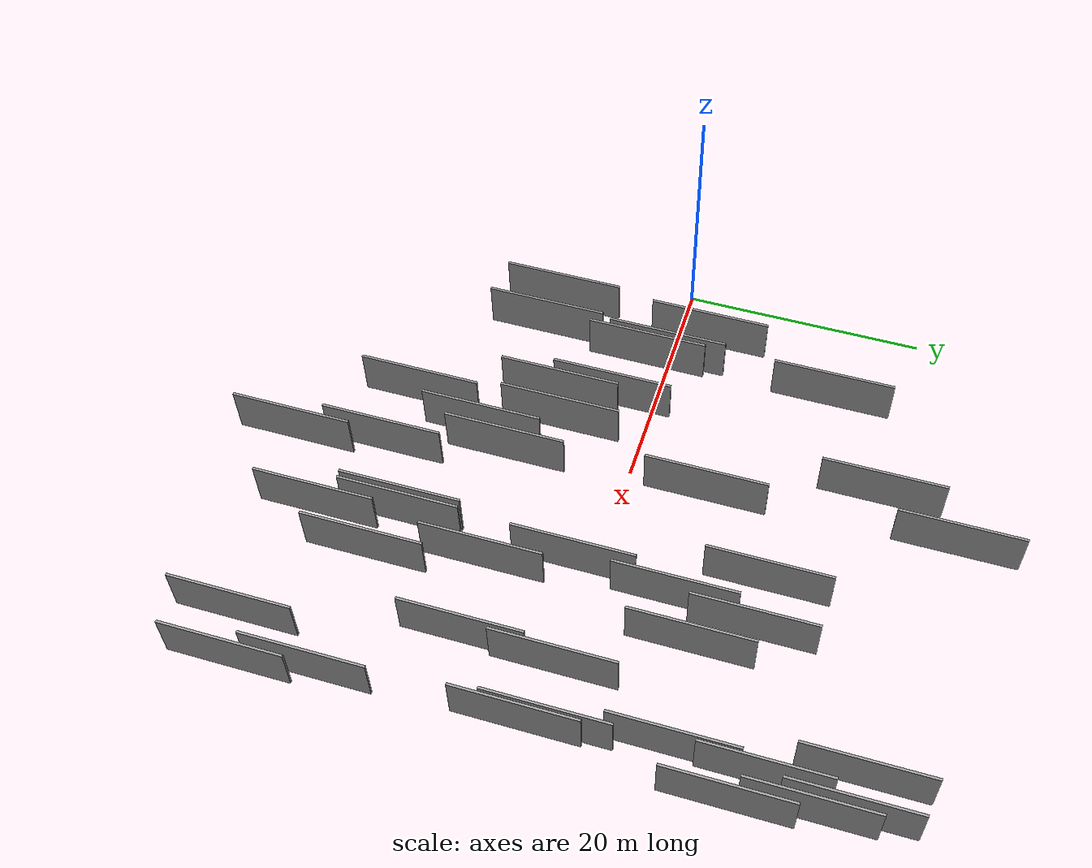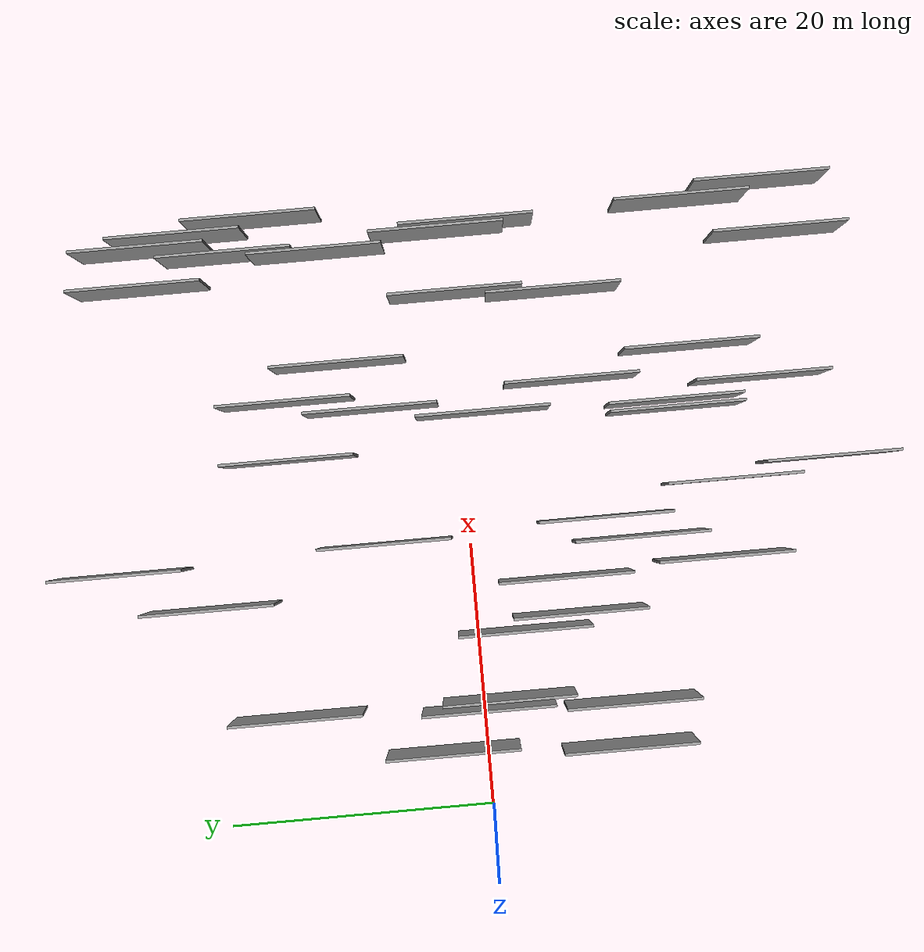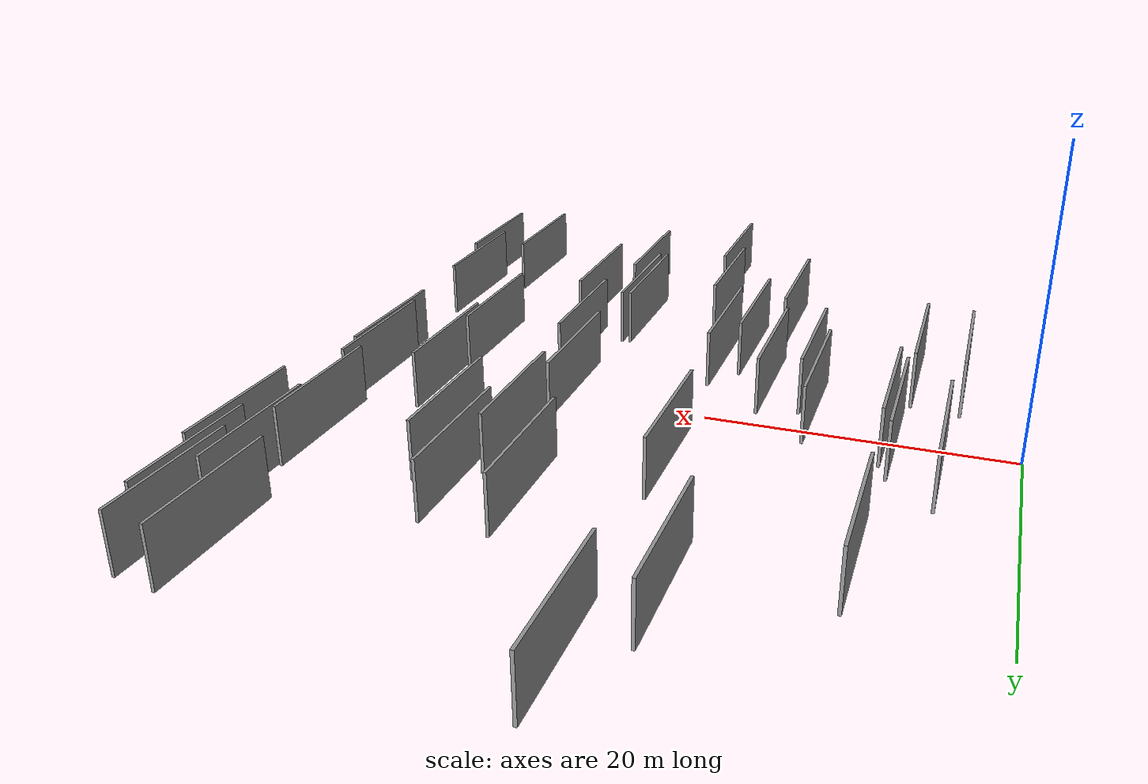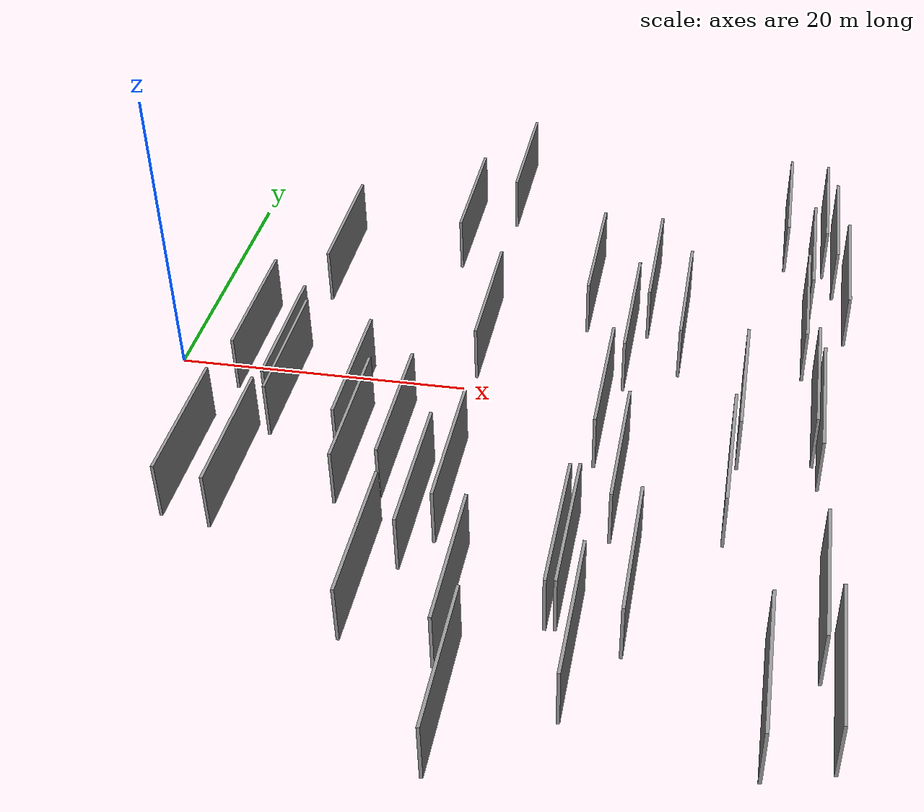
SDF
<sdf version="1.6">
 <world name="default">
  <scene>
   <sky><clouds><speed>12</speed></clouds></sky>
   <ambient>0.4 0.4 0.4 1</ambient>
   <background>0.7 0.7 0.7 1</background>
   <shadows>1</shadows>
  </scene>
  <gravity>0 0 -9.8066</gravity>
  <magnetic_field>6e-06 2.3e-05 -4.2e-05</magnetic_field>
  <physics default="0" name="default_physics" type="ode">
   <ode>
    <solver>
     <type>quick</type>
     <iters>10</iters>
     <sor>1.0</sor>
     <use_dynamic_moi_rescaling>0</use_dynamic_moi_rescaling>
    </solver>
    <constraints>
     <cfm>0</cfm>
     <erp>0.2</erp>
     <contact_max_correcting_vel>100</contact_max_correcting_vel>
     <contact_surface_layer>0.001</contact_surface_layer>
    </constraints>
   </ode>
   <max_step_size>0.004</max_step_size>
   <real_time_factor>1</real_time_factor>
   <real_time_update_rate>250</real_time_update_rate>
  </physics>
  <light name="sun" type="directional">
   <pose>0 0 10 0 0 0</pose>
   <diffuse>0.8 0.8 0.8 1</diffuse>
   <specular>0.2 0.2 0.2 1</specular>
   <attenuation>
    <range>1000</range>
    <constant>0.9</constant>
    <linear>0.01</linear>
    <quadratic>0.001</quadratic>
   </attenuation>
   <direction>-0.5 0.1 -0.9</direction>
  </light>
  <model name="grey_wall_1">
   <static>1</static>
   <pose>30.7414 6.5558 0.0 0.000000 0.000000 1.570796</pose>
   <link name="link">
    <pose>0 0 2.00 0 0 0</pose>
    <collision name="collision"><geometry><box><size>10.00 0.2 4.00</size></box></geometry></collision>
    <visual name="visual">
     <cast_shadows>0</cast_shadows>
     <geometry><box><size>10.00 0.2 4.00</size></box></geometry>
     <material>
      <script>
       <uri>model://grey_wall/materials/scripts</uri>
       <uri>model://grey_wall/materials/textures</uri>
       <name>vrc/grey_wall</name>
      </script>
     </material>
    </visual>
   </link>
  </model>
  <model name="grey_wall_2">
   <static>1</static>
   <pose>17.5205 -18.7293 0.0 0.000000 0.000000 1.570796</pose>
   <link name="link">
    <pose>0 0 2.00 0 0 0</pose>
    <collision name="collision"><geometry><box><size>10.00 0.2 4.00</size></box></geometry></collision>
    <visual name="visual">
     <cast_shadows>0</cast_shadows>
     <geometry><box><size>10.00 0.2 4.00</size></box></geometry>
     <material>
      <script>
       <uri>model://grey_wall/materials/scripts</uri>
       <uri>model://grey_wall/materials/textures</uri>
       <name>vrc/grey_wall</name>
      </script>
     </material>
    </visual>
   </link>
  </model>
  <model name="grey_wall_3">
   <static>1</static>
   <pose>43.6340 0.5578 0.0 0.000000 0.000000 1.570796</pose>
   <link name="link">
    <pose>0 0 2.00 0 0 0</pose>
    <collision name="collision"><geometry><box><size>10.00 0.2 4.00</size></box></geometry></collision>
    <visual name="visual">
     <cast_shadows>0</cast_shadows>
     <geometry><box><size>10.00 0.2 4.00</size></box></geometry>
     <material>
      <script>
       <uri>model://grey_wall/materials/scripts</uri>
       <uri>model://grey_wall/materials/textures</uri>
       <name>vrc/grey_wall</name>
      </script>
     </material>
    </visual>
   </link>
  </model>
  <model name="grey_wall_4">
   <static>1</static>
   <pose>44.0097 -1.6854 0.0 0.000000 0.000000 1.570796</pose>
   <link name="link">
    <pose>0 0 2.00 0 0 0</pose>
    <collision name="collision"><geometry><box><size>10.00 0.2 4.00</size></box></geometry></collision>
    <visual name="visual">
     <cast_shadows>0</cast_shadows>
     <geometry><box><size>10.00 0.2 4.00</size></box></geometry>
     <material>
      <script>
       <uri>model://grey_wall/materials/scripts</uri>
       <uri>model://grey_wall/materials/textures</uri>
       <name>vrc/grey_wall</name>
      </script>
     </material>
    </visual>
   </link>
  </model>
  <model name="grey_wall_5">
   <static>1</static>
   <pose>43.1147 16.3362 0.0 0.000000 0.000000 1.570796</pose>
   <link name="link">
    <pose>0 0 2.00 0 0 0</pose>
    <collision name="collision"><geometry><box><size>10.00 0.2 4.00</size></box></geometry></collision>
    <visual name="visual">
     <cast_shadows>0</cast_shadows>
     <geometry><box><size>10.00 0.2 4.00</size></box></geometry>
     <material>
      <script>
       <uri>model://grey_wall/materials/scripts</uri>
       <uri>model://grey_wall/materials/textures</uri>
       <name>vrc/grey_wall</name>
      </script>
     </material>
    </visual>
   </link>
  </model>
  <model name="grey_wall_6">
   <static>1</static>
   <pose>24.2539 -27.2344 0.0 0.000000 0.000000 1.570796</pose>
   <link name="link">
    <pose>0 0 2.00 0 0 0</pose>
    <collision name="collision"><geometry><box><size>10.00 0.2 4.00</size></box></geometry></collision>
    <visual name="visual">
     <cast_shadows>0</cast_shadows>
     <geometry><box><size>10.00 0.2 4.00</size></box></geometry>
     <material>
      <script>
       <uri>model://grey_wall/materials/scripts</uri>
       <uri>model://grey_wall/materials/textures</uri>
       <name>vrc/grey_wall</name>
      </script>
     </material>
    </visual>
   </link>
  </model>
  <model name="grey_wall_7">
   <static>1</static>
   <pose>13.3292 -3.4787 0.0 0.000000 0.000000 1.570796</pose>
   <link name="link">
    <pose>0 0 2.00 0 0 0</pose>
    <collision name="collision"><geometry><box><size>10.00 0.2 4.00</size></box></geometry></collision>
    <visual name="visual">
     <cast_shadows>0</cast_shadows>
     <geometry><box><size>10.00 0.2 4.00</size></box></geometry>
     <material>
      <script>
       <uri>model://grey_wall/materials/scripts</uri>
       <uri>model://grey_wall/materials/textures</uri>
       <name>vrc/grey_wall</name>
      </script>
     </material>
    </visual>
   </link>
  </model>
  <model name="grey_wall_8">
   <static>1</static>
   <pose>41.1831 23.1403 0.0 0.000000 0.000000 1.570796</pose>
   <link name="link">
    <pose>0 0 2.00 0 0 0</pose>
    <collision name="collision"><geometry><box><size>10.00 0.2 4.00</size></box></geometry></collision>
    <visual name="visual">
     <cast_shadows>0</cast_shadows>
     <geometry><box><size>10.00 0.2 4.00</size></box></geometry>
     <material>
      <script>
       <uri>model://grey_wall/materials/scripts</uri>
       <uri>model://grey_wall/materials/textures</uri>
       <name>vrc/grey_wall</name>
      </script>
     </material>
    </visual>
   </link>
  </model>
  <model name="grey_wall_9">
   <static>1</static>
   <pose>29.8172 -1.7241 0.0 0.000000 0.000000 1.570796</pose>
   <link name="link">
    <pose>0 0 2.00 0 0 0</pose>
    <collision name="collision"><geometry><box><size>10.00 0.2 4.00</size></box></geometry></collision>
    <visual name="visual">
     <cast_shadows>0</cast_shadows>
     <geometry><box><size>10.00 0.2 4.00</size></box></geometry>
     <material>
      <script>
       <uri>model://grey_wall/materials/scripts</uri>
       <uri>model://grey_wall/materials/textures</uri>
       <name>vrc/grey_wall</name>
      </script>
     </material>
    </visual>
   </link>
  </model>
  <model name="grey_wall_10">
   <static>1</static>
   <pose>38.4385 -7.6919 0.0 0.000000 0.000000 1.570796</pose>
   <link name="link">
    <pose>0 0 2.00 0 0 0</pose>
    <collision name="collision"><geometry><box><size>10.00 0.2 4.00</size></box></geometry></collision>
    <visual name="visual">
     <cast_shadows>0</cast_shadows>
     <geometry><box><size>10.00 0.2 4.00</size></box></geometry>
     <material>
      <script>
       <uri>model://grey_wall/materials/scripts</uri>
       <uri>model://grey_wall/materials/textures</uri>
       <name>vrc/grey_wall</name>
      </script>
     </material>
    </visual>
   </link>
  </model>
  <model name="grey_wall_11">
   <static>1</static>
   <pose>31.6705 -8.4956 0.0 0.000000 0.000000 1.570796</pose>
   <link name="link">
    <pose>0 0 2.00 0 0 0</pose>
    <collision name="collision"><geometry><box><size>10.00 0.2 4.00</size></box></geometry></collision>
    <visual name="visual">
     <cast_shadows>0</cast_shadows>
     <geometry><box><size>10.00 0.2 4.00</size></box></geometry>
     <material>
      <script>
       <uri>model://grey_wall/materials/scripts</uri>
       <uri>model://grey_wall/materials/textures</uri>
       <name>vrc/grey_wall</name>
      </script>
     </material>
    </visual>
   </link>
  </model>
  <model name="grey_wall_12">
   <static>1</static>
   <pose>8.3221 -1.8800 0.0 0.000000 0.000000 1.570796</pose>
   <link name="link">
    <pose>0 0 2.00 0 0 0</pose>
    <collision name="collision"><geometry><box><size>10.00 0.2 4.00</size></box></geometry></collision>
    <visual name="visual">
     <cast_shadows>0</cast_shadows>
     <geometry><box><size>10.00 0.2 4.00</size></box></geometry>
     <material>
      <script>
       <uri>model://grey_wall/materials/scripts</uri>
       <uri>model://grey_wall/materials/textures</uri>
       <name>vrc/grey_wall</name>
      </script>
     </material>
    </visual>
   </link>
  </model>
  <model name="grey_wall_13">
   <static>1</static>
   <pose>4.7229 2.6164 0.0 0.000000 0.000000 1.570796</pose>
   <link name="link">
    <pose>0 0 2.00 0 0 0</pose>
    <collision name="collision"><geometry><box><size>10.00 0.2 4.00</size></box></geometry></collision>
    <visual name="visual">
     <cast_shadows>0</cast_shadows>
     <geometry><box><size>10.00 0.2 4.00</size></box></geometry>
     <material>
      <script>
       <uri>model://grey_wall/materials/scripts</uri>
       <uri>model://grey_wall/materials/textures</uri>
       <name>vrc/grey_wall</name>
      </script>
     </material>
    </visual>
   </link>
  </model>
  <model name="grey_wall_14">
   <static>1</static>
   <pose>44.4008 -17.6628 0.0 0.000000 0.000000 1.570796</pose>
   <link name="link">
    <pose>0 0 2.00 0 0 0</pose>
    <collision name="collision"><geometry><box><size>10.00 0.2 4.00</size></box></geometry></collision>
    <visual name="visual">
     <cast_shadows>0</cast_shadows>
     <geometry><box><size>10.00 0.2 4.00</size></box></geometry>
     <material>
      <script>
       <uri>model://grey_wall/materials/scripts</uri>
       <uri>model://grey_wall/materials/textures</uri>
       <name>vrc/grey_wall</name>
      </script>
     </material>
    </visual>
   </link>
  </model>
  <model name="grey_wall_15">
   <static>1</static>
   <pose>20.0169 26.3299 0.0 0.000000 0.000000 1.570796</pose>
   <link name="link">
    <pose>0 0 2.00 0 0 0</pose>
    <collision name="collision"><geometry><box><size>10.00 0.2 4.00</size></box></geometry></collision>
    <visual name="visual">
     <cast_shadows>0</cast_shadows>
     <geometry><box><size>10.00 0.2 4.00</size></box></geometry>
     <material>
      <script>
       <uri>model://grey_wall/materials/scripts</uri>
       <uri>model://grey_wall/materials/textures</uri>
       <name>vrc/grey_wall</name>
      </script>
     </material>
    </visual>
   </link>
  </model>
  <model name="grey_wall_16">
   <static>1</static>
   <pose>31.7821 12.8897 0.0 0.000000 0.000000 1.570796</pose>
   <link name="link">
    <pose>0 0 2.00 0 0 0</pose>
    <collision name="collision"><geometry><box><size>10.00 0.2 4.00</size></box></geometry></collision>
    <visual name="visual">
     <cast_shadows>0</cast_shadows>
     <geometry><box><size>10.00 0.2 4.00</size></box></geometry>
     <material>
      <script>
       <uri>model://grey_wall/materials/scripts</uri>
       <uri>model://grey_wall/materials/textures</uri>
       <name>vrc/grey_wall</name>
      </script>
     </material>
    </visual>
   </link>
  </model>
  <model name="grey_wall_17">
   <static>1</static>
   <pose>7.7151 -0.2819 0.0 0.000000 0.000000 1.570796</pose>
   <link name="link">
    <pose>0 0 2.00 0 0 0</pose>
    <collision name="collision"><geometry><box><size>10.00 0.2 4.00</size></box></geometry></collision>
    <visual name="visual">
     <cast_shadows>0</cast_shadows>
     <geometry><box><size>10.00 0.2 4.00</size></box></geometry>
     <material>
      <script>
       <uri>model://grey_wall/materials/scripts</uri>
       <uri>model://grey_wall/materials/textures</uri>
       <name>vrc/grey_wall</name>
      </script>
     </material>
    </visual>
   </link>
  </model>
  <model name="grey_wall_18">
   <static>1</static>
   <pose>42.7934 9.6397 0.0 0.000000 0.000000 1.570796</pose>
   <link name="link">
    <pose>0 0 2.00 0 0 0</pose>
    <collision name="collision"><geometry><box><size>10.00 0.2 4.00</size></box></geometry></collision>
    <visual name="visual">
     <cast_shadows>0</cast_shadows>
     <geometry><box><size>10.00 0.2 4.00</size></box></geometry>
     <material>
      <script>
       <uri>model://grey_wall/materials/scripts</uri>
       <uri>model://grey_wall/materials/textures</uri>
       <name>vrc/grey_wall</name>
      </script>
     </material>
    </visual>
   </link>
  </model>
  <model name="grey_wall_19">
   <static>1</static>
   <pose>21.2046 -10.1456 0.0 0.000000 0.000000 1.570796</pose>
   <link name="link">
    <pose>0 0 2.00 0 0 0</pose>
    <collision name="collision"><geometry><box><size>10.00 0.2 4.00</size></box></geometry></collision>
    <visual name="visual">
     <cast_shadows>0</cast_shadows>
     <geometry><box><size>10.00 0.2 4.00</size></box></geometry>
     <material>
      <script>
       <uri>model://grey_wall/materials/scripts</uri>
       <uri>model://grey_wall/materials/textures</uri>
       <name>vrc/grey_wall</name>
      </script>
     </material>
    </visual>
   </link>
  </model>
  <model name="grey_wall_20">
   <static>1</static>
   <pose>45.6466 14.2468 0.0 0.000000 0.000000 1.570796</pose>
   <link name="link">
    <pose>0 0 2.00 0 0 0</pose>
    <collision name="collision"><geometry><box><size>10.00 0.2 4.00</size></box></geometry></collision>
    <visual name="visual">
     <cast_shadows>0</cast_shadows>
     <geometry><box><size>10.00 0.2 4.00</size></box></geometry>
     <material>
      <script>
       <uri>model://grey_wall/materials/scripts</uri>
       <uri>model://grey_wall/materials/textures</uri>
       <name>vrc/grey_wall</name>
      </script>
     </material>
    </visual>
   </link>
  </model>
  <model name="grey_wall_21">
   <static>1</static>
   <pose>16.9990 -6.8213 0.0 0.000000 0.000000 1.570796</pose>
   <link name="link">
    <pose>0 0 2.00 0 0 0</pose>
    <collision name="collision"><geometry><box><size>10.00 0.2 4.00</size></box></geometry></collision>
    <visual name="visual">
     <cast_shadows>0</cast_shadows>
     <geometry><box><size>10.00 0.2 4.00</size></box></geometry>
     <material>
      <script>
       <uri>model://grey_wall/materials/scripts</uri>
       <uri>model://grey_wall/materials/textures</uri>
       <name>vrc/grey_wall</name>
      </script>
     </material>
    </visual>
   </link>
  </model>
  <model name="grey_wall_22">
   <static>1</static>
   <pose>27.4420 13.0119 0.0 0.000000 0.000000 1.570796</pose>
   <link name="link">
    <pose>0 0 2.00 0 0 0</pose>
    <collision name="collision"><geometry><box><size>10.00 0.2 4.00</size></box></geometry></collision>
    <visual name="visual">
     <cast_shadows>0</cast_shadows>
     <geometry><box><size>10.00 0.2 4.00</size></box></geometry>
     <material>
      <script>
       <uri>model://grey_wall/materials/scripts</uri>
       <uri>model://grey_wall/materials/textures</uri>
       <name>vrc/grey_wall</name>
      </script>
     </material>
    </visual>
   </link>
  </model>
  <model name="grey_wall_23">
   <static>1</static>
   <pose>20.6279 6.3645 0.0 0.000000 0.000000 1.570796</pose>
   <link name="link">
    <pose>0 0 2.00 0 0 0</pose>
    <collision name="collision"><geometry><box><size>10.00 0.2 4.00</size></box></geometry></collision>
    <visual name="visual">
     <cast_shadows>0</cast_shadows>
     <geometry><box><size>10.00 0.2 4.00</size></box></geometry>
     <material>
      <script>
       <uri>model://grey_wall/materials/scripts</uri>
       <uri>model://grey_wall/materials/textures</uri>
       <name>vrc/grey_wall</name>
      </script>
     </material>
    </visual>
   </link>
  </model>
  <model name="grey_wall_24">
   <static>1</static>
   <pose>44.7964 19.9449 0.0 0.000000 0.000000 1.570796</pose>
   <link name="link">
    <pose>0 0 2.00 0 0 0</pose>
    <collision name="collision"><geometry><box><size>10.00 0.2 4.00</size></box></geometry></collision>
    <visual name="visual">
     <cast_shadows>0</cast_shadows>
     <geometry><box><size>10.00 0.2 4.00</size></box></geometry>
     <material>
      <script>
       <uri>model://grey_wall/materials/scripts</uri>
       <uri>model://grey_wall/materials/textures</uri>
       <name>vrc/grey_wall</name>
      </script>
     </material>
    </visual>
   </link>
  </model>
  <model name="grey_wall_25">
   <static>1</static>
   <pose>19.5503 -12.7050 0.0 0.000000 0.000000 1.570796</pose>
   <link name="link">
    <pose>0 0 2.00 0 0 0</pose>
    <collision name="collision"><geometry><box><size>10.00 0.2 4.00</size></box></geometry></collision>
    <visual name="visual">
     <cast_shadows>0</cast_shadows>
     <geometry><box><size>10.00 0.2 4.00</size></box></geometry>
     <material>
      <script>
       <uri>model://grey_wall/materials/scripts</uri>
       <uri>model://grey_wall/materials/textures</uri>
       <name>vrc/grey_wall</name>
      </script>
     </material>
    </visual>
   </link>
  </model>
  <model name="grey_wall_26">
   <static>1</static>
   <pose>38.8819 -0.4343 0.0 0.000000 0.000000 1.570796</pose>
   <link name="link">
    <pose>0 0 2.00 0 0 0</pose>
    <collision name="collision"><geometry><box><size>10.00 0.2 4.00</size></box></geometry></collision>
    <visual name="visual">
     <cast_shadows>0</cast_shadows>
     <geometry><box><size>10.00 0.2 4.00</size></box></geometry>
     <material>
      <script>
       <uri>model://grey_wall/materials/scripts</uri>
       <uri>model://grey_wall/materials/textures</uri>
       <name>vrc/grey_wall</name>
      </script>
     </material>
    </visual>
   </link>
  </model>
  <model name="grey_wall_27">
   <static>1</static>
   <pose>23.2420 -19.8667 0.0 0.000000 0.000000 1.570796</pose>
   <link name="link">
    <pose>0 0 2.00 0 0 0</pose>
    <collision name="collision"><geometry><box><size>10.00 0.2 4.00</size></box></geometry></collision>
    <visual name="visual">
     <cast_shadows>0</cast_shadows>
     <geometry><box><size>10.00 0.2 4.00</size></box></geometry>
     <material>
      <script>
       <uri>model://grey_wall/materials/scripts</uri>
       <uri>model://grey_wall/materials/textures</uri>
       <name>vrc/grey_wall</name>
      </script>
     </material>
    </visual>
   </link>
  </model>
  <model name="grey_wall_28">
   <static>1</static>
   <pose>7.3125 -11.0342 0.0 0.000000 0.000000 1.570796</pose>
   <link name="link">
    <pose>0 0 2.00 0 0 0</pose>
    <collision name="collision"><geometry><box><size>10.00 0.2 4.00</size></box></geometry></collision>
    <visual name="visual">
     <cast_shadows>0</cast_shadows>
     <geometry><box><size>10.00 0.2 4.00</size></box></geometry>
     <material>
      <script>
       <uri>model://grey_wall/materials/scripts</uri>
       <uri>model://grey_wall/materials/textures</uri>
       <name>vrc/grey_wall</name>
      </script>
     </material>
    </visual>
   </link>
  </model>
  <model name="grey_wall_29">
   <static>1</static>
   <pose>45.2885 -23.6494 0.0 0.000000 0.000000 1.570796</pose>
   <link name="link">
    <pose>0 0 2.00 0 0 0</pose>
    <collision name="collision"><geometry><box><size>10.00 0.2 4.00</size></box></geometry></collision>
    <visual name="visual">
     <cast_shadows>0</cast_shadows>
     <geometry><box><size>10.00 0.2 4.00</size></box></geometry>
     <material>
      <script>
       <uri>model://grey_wall/materials/scripts</uri>
       <uri>model://grey_wall/materials/textures</uri>
       <name>vrc/grey_wall</name>
      </script>
     </material>
    </visual>
   </link>
  </model>
  <model name="grey_wall_30">
   <static>1</static>
   <pose>14.2884 -7.6811 0.0 0.000000 0.000000 1.570796</pose>
   <link name="link">
    <pose>0 0 2.00 0 0 0</pose>
    <collision name="collision"><geometry><box><size>10.00 0.2 4.00</size></box></geometry></collision>
    <visual name="visual">
     <cast_shadows>0</cast_shadows>
     <geometry><box><size>10.00 0.2 4.00</size></box></geometry>
     <material>
      <script>
       <uri>model://grey_wall/materials/scripts</uri>
       <uri>model://grey_wall/materials/textures</uri>
       <name>vrc/grey_wall</name>
      </script>
     </material>
    </visual>
   </link>
  </model>
  <model name="grey_wall_31">
   <static>1</static>
   <pose>30.6637 -22.6045 0.0 0.000000 0.000000 1.570796</pose>
   <link name="link">
    <pose>0 0 2.00 0 0 0</pose>
    <collision name="collision"><geometry><box><size>10.00 0.2 4.00</size></box></geometry></collision>
    <visual name="visual">
     <cast_shadows>0</cast_shadows>
     <geometry><box><size>10.00 0.2 4.00</size></box></geometry>
     <material>
      <script>
       <uri>model://grey_wall/materials/scripts</uri>
       <uri>model://grey_wall/materials/textures</uri>
       <name>vrc/grey_wall</name>
      </script>
     </material>
    </visual>
   </link>
  </model>
  <model name="grey_wall_32">
   <static>1</static>
   <pose>4.0614 -10.5460 0.0 0.000000 0.000000 1.570796</pose>
   <link name="link">
    <pose>0 0 2.00 0 0 0</pose>
    <collision name="collision"><geometry><box><size>10.00 0.2 4.00</size></box></geometry></collision>
    <visual name="visual">
     <cast_shadows>0</cast_shadows>
     <geometry><box><size>10.00 0.2 4.00</size></box></geometry>
     <material>
      <script>
       <uri>model://grey_wall/materials/scripts</uri>
       <uri>model://grey_wall/materials/textures</uri>
       <name>vrc/grey_wall</name>
      </script>
     </material>
    </visual>
   </link>
  </model>
  <model name="grey_wall_33">
   <static>1</static>
   <pose>44.0309 22.6967 0.0 0.000000 0.000000 1.570796</pose>
   <link name="link">
    <pose>0 0 2.00 0 0 0</pose>
    <collision name="collision"><geometry><box><size>10.00 0.2 4.00</size></box></geometry></collision>
    <visual name="visual">
     <cast_shadows>0</cast_shadows>
     <geometry><box><size>10.00 0.2 4.00</size></box></geometry>
     <material>
      <script>
       <uri>model://grey_wall/materials/scripts</uri>
       <uri>model://grey_wall/materials/textures</uri>
       <name>vrc/grey_wall</name>
      </script>
     </material>
    </visual>
   </link>
  </model>
  <model name="grey_wall_34">
   <static>1</static>
   <pose>34.3211 8.7201 0.0 0.000000 0.000000 1.570796</pose>
   <link name="link">
    <pose>0 0 2.00 0 0 0</pose>
    <collision name="collision"><geometry><box><size>10.00 0.2 4.00</size></box></geometry></collision>
    <visual name="visual">
     <cast_shadows>0</cast_shadows>
     <geometry><box><size>10.00 0.2 4.00</size></box></geometry>
     <material>
      <script>
       <uri>model://grey_wall/materials/scripts</uri>
       <uri>model://grey_wall/materials/textures</uri>
       <name>vrc/grey_wall</name>
      </script>
     </material>
    </visual>
   </link>
  </model>
  <model name="grey_wall_35">
   <static>1</static>
   <pose>29.4973 -16.0376 0.0 0.000000 0.000000 1.570796</pose>
   <link name="link">
    <pose>0 0 2.00 0 0 0</pose>
    <collision name="collision"><geometry><box><size>10.00 0.2 4.00</size></box></geometry></collision>
    <visual name="visual">
     <cast_shadows>0</cast_shadows>
     <geometry><box><size>10.00 0.2 4.00</size></box></geometry>
     <material>
      <script>
       <uri>model://grey_wall/materials/scripts</uri>
       <uri>model://grey_wall/materials/textures</uri>
       <name>vrc/grey_wall</name>
      </script>
     </material>
    </visual>
   </link>
  </model>
  <model name="grey_wall_36">
   <static>1</static>
   <pose>33.4327 -17.5006 0.0 0.000000 0.000000 1.570796</pose>
   <link name="link">
    <pose>0 0 2.00 0 0 0</pose>
    <collision name="collision"><geometry><box><size>10.00 0.2 4.00</size></box></geometry></collision>
    <visual name="visual">
     <cast_shadows>0</cast_shadows>
     <geometry><box><size>10.00 0.2 4.00</size></box></geometry>
     <material>
      <script>
       <uri>model://grey_wall/materials/scripts</uri>
       <uri>model://grey_wall/materials/textures</uri>
       <name>vrc/grey_wall</name>
      </script>
     </material>
    </visual>
   </link>
  </model>
  <model name="grey_wall_37">
   <static>1</static>
   <pose>41.4334 -24.7458 0.0 0.000000 0.000000 1.570796</pose>
   <link name="link">
    <pose>0 0 2.00 0 0 0</pose>
    <collision name="collision"><geometry><box><size>10.00 0.2 4.00</size></box></geometry></collision>
    <visual name="visual">
     <cast_shadows>0</cast_shadows>
     <geometry><box><size>10.00 0.2 4.00</size></box></geometry>
     <material>
      <script>
       <uri>model://grey_wall/materials/scripts</uri>
       <uri>model://grey_wall/materials/textures</uri>
       <name>vrc/grey_wall</name>
      </script>
     </material>
    </visual>
   </link>
  </model>
  <model name="grey_wall_38">
   <static>1</static>
   <pose>16.8904 19.7958 0.0 0.000000 0.000000 1.570796</pose>
   <link name="link">
    <pose>0 0 2.00 0 0 0</pose>
    <collision name="collision"><geometry><box><size>10.00 0.2 4.00</size></box></geometry></collision>
    <visual name="visual">
     <cast_shadows>0</cast_shadows>
     <geometry><box><size>10.00 0.2 4.00</size></box></geometry>
     <material>
      <script>
       <uri>model://grey_wall/materials/scripts</uri>
       <uri>model://grey_wall/materials/textures</uri>
       <name>vrc/grey_wall</name>
      </script>
     </material>
    </visual>
   </link>
  </model>
  <model name="grey_wall_39">
   <static>1</static>
   <pose>8.2273 14.0025 0.0 0.000000 0.000000 1.570796</pose>
   <link name="link">
    <pose>0 0 2.00 0 0 0</pose>
    <collision name="collision"><geometry><box><size>10.00 0.2 4.00</size></box></geometry></collision>
    <visual name="visual">
     <cast_shadows>0</cast_shadows>
     <geometry><box><size>10.00 0.2 4.00</size></box></geometry>
     <material>
      <script>
       <uri>model://grey_wall/materials/scripts</uri>
       <uri>model://grey_wall/materials/textures</uri>
       <name>vrc/grey_wall</name>
      </script>
     </material>
    </visual>
   </link>
  </model>
  <model name="grey_wall_40">
   <static>1</static>
   <pose>28.8999 -16.1061 0.0 0.000000 0.000000 1.570796</pose>
   <link name="link">
    <pose>0 0 2.00 0 0 0</pose>
    <collision name="collision"><geometry><box><size>10.00 0.2 4.00</size></box></geometry></collision>
    <visual name="visual">
     <cast_shadows>0</cast_shadows>
     <geometry><box><size>10.00 0.2 4.00</size></box></geometry>
     <material>
      <script>
       <uri>model://grey_wall/materials/scripts</uri>
       <uri>model://grey_wall/materials/textures</uri>
       <name>vrc/grey_wall</name>
      </script>
     </material>
    </visual>
   </link>
  </model>
 </world>
</sdf>
